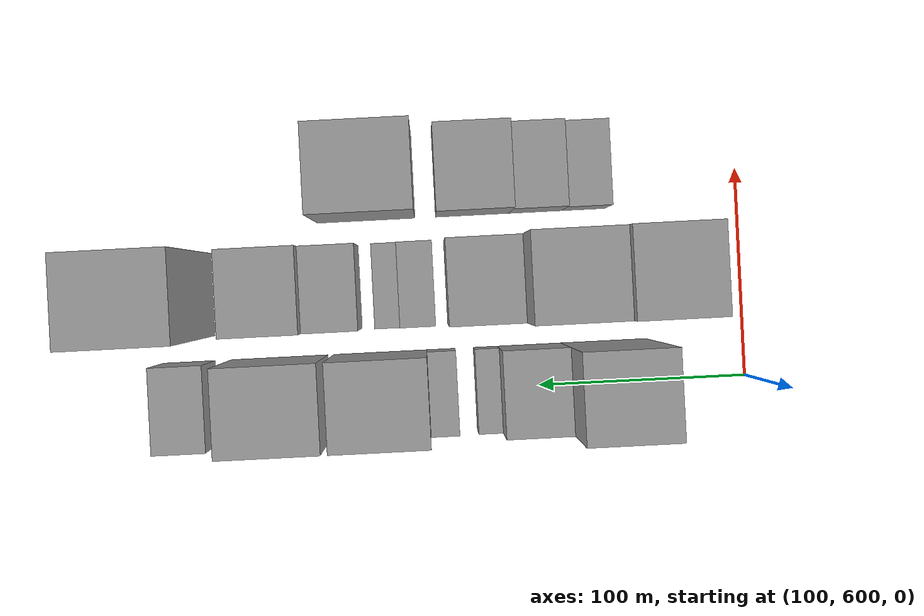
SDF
<sdf version="1.6">
 <world name="default">
  <model name="building_46">
   <static>1</static>
   <pose>100.0000 667.8259 0 0.000000 0.000000 0.000000</pose>
   <link name="link">
    <pose>0 0 54.00 0 0 0</pose>
    <collision name="collision"><geometry><box><size>40.0000 41.4337 108.0000</size></box></geometry></collision>
    <visual name="visual">
     <cast_shadows>0</cast_shadows>
     <geometry><box><size>40.0000 41.4337 108.0000</size></box></geometry>
     <material>
      <script>
       <uri>model://grey_wall/materials/scripts</uri>
       <uri>model://grey_wall/materials/textures</uri>
       <name>vrc/grey_wall</name>
      </script>
     </material>
    </visual>
   </link>
  </model>
  <model name="building_47">
   <static>1</static>
   <pose>100.0000 703.9702 0 0.000000 0.000000 0.000000</pose>
   <link name="link">
    <pose>0 0 28.50 0 0 0</pose>
    <collision name="collision"><geometry><box><size>40.0000 30.8548 57.0000</size></box></geometry></collision>
    <visual name="visual">
     <cast_shadows>0</cast_shadows>
     <geometry><box><size>40.0000 30.8548 57.0000</size></box></geometry>
     <material>
      <script>
       <uri>model://grey_wall/materials/scripts</uri>
       <uri>model://grey_wall/materials/textures</uri>
       <name>vrc/grey_wall</name>
      </script>
     </material>
    </visual>
   </link>
  </model>
  <model name="building_48">
   <static>1</static>
   <pose>100.0000 725.1432 0 0.000000 0.000000 0.000000</pose>
   <link name="link">
    <pose>0 0 12.00 0 0 0</pose>
    <collision name="collision"><geometry><box><size>40.0000 11.4913 24.0000</size></box></geometry></collision>
    <visual name="visual">
     <cast_shadows>0</cast_shadows>
     <geometry><box><size>40.0000 11.4913 24.0000</size></box></geometry>
     <material>
      <script>
       <uri>model://grey_wall/materials/scripts</uri>
       <uri>model://grey_wall/materials/textures</uri>
       <name>vrc/grey_wall</name>
      </script>
     </material>
    </visual>
   </link>
  </model>
  <model name="building_49">
   <static>1</static>
   <pose>100.0000 746.6325 0 0.000000 0.000000 0.000000</pose>
   <link name="link">
    <pose>0 0 13.50 0 0 0</pose>
    <collision name="collision"><geometry><box><size>40.0000 13.4873 27.0000</size></box></geometry></collision>
    <visual name="visual">
     <cast_shadows>0</cast_shadows>
     <geometry><box><size>40.0000 13.4873 27.0000</size></box></geometry>
     <material>
      <script>
       <uri>model://grey_wall/materials/scripts</uri>
       <uri>model://grey_wall/materials/textures</uri>
       <name>vrc/grey_wall</name>
      </script>
     </material>
    </visual>
   </link>
  </model>
  <model name="building_50">
   <static>1</static>
   <pose>100.0000 775.8892 0 0.000000 0.000000 0.000000</pose>
   <link name="link">
    <pose>0 0 42.00 0 0 0</pose>
    <collision name="collision"><geometry><box><size>40.0000 45.0261 84.0000</size></box></geometry></collision>
    <visual name="visual">
     <cast_shadows>0</cast_shadows>
     <geometry><box><size>40.0000 45.0261 84.0000</size></box></geometry>
     <material>
      <script>
       <uri>model://grey_wall/materials/scripts</uri>
       <uri>model://grey_wall/materials/textures</uri>
       <name>vrc/grey_wall</name>
      </script>
     </material>
    </visual>
   </link>
  </model>
  <model name="building_51">
   <static>1</static>
   <pose>100.0000 824.7497 0 0.000000 0.000000 0.000000</pose>
   <link name="link">
    <pose>0 0 42.00 0 0 0</pose>
    <collision name="collision"><geometry><box><size>40.0000 46.6949 84.0000</size></box></geometry></collision>
    <visual name="visual">
     <cast_shadows>0</cast_shadows>
     <geometry><box><size>40.0000 46.6949 84.0000</size></box></geometry>
     <material>
      <script>
       <uri>model://grey_wall/materials/scripts</uri>
       <uri>model://grey_wall/materials/textures</uri>
       <name>vrc/grey_wall</name>
      </script>
     </material>
    </visual>
   </link>
  </model>
  <model name="building_52">
   <static>1</static>
   <pose>100.0000 868.5362 0 0.000000 0.000000 0.000000</pose>
   <link name="link">
    <pose>0 0 24.00 0 0 0</pose>
    <collision name="collision"><geometry><box><size>40.0000 24.8780 48.0000</size></box></geometry></collision>
    <visual name="visual">
     <cast_shadows>0</cast_shadows>
     <geometry><box><size>40.0000 24.8780 48.0000</size></box></geometry>
     <material>
      <script>
       <uri>model://grey_wall/materials/scripts</uri>
       <uri>model://grey_wall/materials/textures</uri>
       <name>vrc/grey_wall</name>
      </script>
     </material>
    </visual>
   </link>
  </model>
  <model name="building_95">
   <static>1</static>
   <pose>152.0000 647.0795 0 0.000000 0.000000 0.000000</pose>
   <link name="link">
    <pose>0 0 60.00 0 0 0</pose>
    <collision name="collision"><geometry><box><size>40.0000 38.8852 120.0000</size></box></geometry></collision>
    <visual name="visual">
     <cast_shadows>0</cast_shadows>
     <geometry><box><size>40.0000 38.8852 120.0000</size></box></geometry>
     <material>
      <script>
       <uri>model://grey_wall/materials/scripts</uri>
       <uri>model://grey_wall/materials/textures</uri>
       <name>vrc/grey_wall</name>
      </script>
     </material>
    </visual>
   </link>
  </model>
  <model name="building_96">
   <static>1</static>
   <pose>152.0000 687.1343 0 0.000000 0.000000 0.000000</pose>
   <link name="link">
    <pose>0 0 55.50 0 0 0</pose>
    <collision name="collision"><geometry><box><size>40.0000 41.2244 111.0000</size></box></geometry></collision>
    <visual name="visual">
     <cast_shadows>0</cast_shadows>
     <geometry><box><size>40.0000 41.2244 111.0000</size></box></geometry>
     <material>
      <script>
       <uri>model://grey_wall/materials/scripts</uri>
       <uri>model://grey_wall/materials/textures</uri>
       <name>vrc/grey_wall</name>
      </script>
     </material>
    </visual>
   </link>
  </model>
  <model name="building_97">
   <static>1</static>
   <pose>152.0000 725.1940 0 0.000000 0.000000 0.000000</pose>
   <link name="link">
    <pose>0 0 30.00 0 0 0</pose>
    <collision name="collision"><geometry><box><size>40.0000 34.8949 60.0000</size></box></geometry></collision>
    <visual name="visual">
     <cast_shadows>0</cast_shadows>
     <geometry><box><size>40.0000 34.8949 60.0000</size></box></geometry>
     <material>
      <script>
       <uri>model://grey_wall/materials/scripts</uri>
       <uri>model://grey_wall/materials/textures</uri>
       <name>vrc/grey_wall</name>
      </script>
     </material>
    </visual>
   </link>
  </model>
  <model name="building_98">
   <static>1</static>
   <pose>152.0000 756.9708 0 0.000000 0.000000 0.000000</pose>
   <link name="link">
    <pose>0 0 16.50 0 0 0</pose>
    <collision name="collision"><geometry><box><size>40.0000 16.6586 33.0000</size></box></geometry></collision>
    <visual name="visual">
     <cast_shadows>0</cast_shadows>
     <geometry><box><size>40.0000 16.6586 33.0000</size></box></geometry>
     <material>
      <script>
       <uri>model://grey_wall/materials/scripts</uri>
       <uri>model://grey_wall/materials/textures</uri>
       <name>vrc/grey_wall</name>
      </script>
     </material>
    </visual>
   </link>
  </model>
  <model name="building_99">
   <static>1</static>
   <pose>152.0000 771.2315 0 0.000000 0.000000 0.000000</pose>
   <link name="link">
    <pose>0 0 13.50 0 0 0</pose>
    <collision name="collision"><geometry><box><size>40.0000 11.8629 27.0000</size></box></geometry></collision>
    <visual name="visual">
     <cast_shadows>0</cast_shadows>
     <geometry><box><size>40.0000 11.8629 27.0000</size></box></geometry>
     <material>
      <script>
       <uri>model://grey_wall/materials/scripts</uri>
       <uri>model://grey_wall/materials/textures</uri>
       <name>vrc/grey_wall</name>
      </script>
     </material>
    </visual>
   </link>
  </model>
  <model name="building_100">
   <static>1</static>
   <pose>152.0000 797.1972 0 0.000000 0.000000 0.000000</pose>
   <link name="link">
    <pose>0 0 24.00 0 0 0</pose>
    <collision name="collision"><geometry><box><size>40.0000 26.0684 48.0000</size></box></geometry></collision>
    <visual name="visual">
     <cast_shadows>0</cast_shadows>
     <geometry><box><size>40.0000 26.0684 48.0000</size></box></geometry>
     <material>
      <script>
       <uri>model://grey_wall/materials/scripts</uri>
       <uri>model://grey_wall/materials/textures</uri>
       <name>vrc/grey_wall</name>
      </script>
     </material>
    </visual>
   </link>
  </model>
  <model name="building_101">
   <static>1</static>
   <pose>152.0000 828.4185 0 0.000000 0.000000 0.000000</pose>
   <link name="link">
    <pose>0 0 31.50 0 0 0</pose>
    <collision name="collision"><geometry><box><size>40.0000 36.3743 63.0000</size></box></geometry></collision>
    <visual name="visual">
     <cast_shadows>0</cast_shadows>
     <geometry><box><size>40.0000 36.3743 63.0000</size></box></geometry>
     <material>
      <script>
       <uri>model://grey_wall/materials/scripts</uri>
       <uri>model://grey_wall/materials/textures</uri>
       <name>vrc/grey_wall</name>
      </script>
     </material>
    </visual>
   </link>
  </model>
  <model name="building_102">
   <static>1</static>
   <pose>152.0000 879.6352 0 0.000000 0.000000 0.000000</pose>
   <link name="link">
    <pose>0 0 66.00 0 0 0</pose>
    <collision name="collision"><geometry><box><size>40.0000 48.0590 132.0000</size></box></geometry></collision>
    <visual name="visual">
     <cast_shadows>0</cast_shadows>
     <geometry><box><size>40.0000 48.0590 132.0000</size></box></geometry>
     <material>
      <script>
       <uri>model://grey_wall/materials/scripts</uri>
       <uri>model://grey_wall/materials/textures</uri>
       <name>vrc/grey_wall</name>
      </script>
     </material>
    </visual>
   </link>
  </model>
  <model name="building_149">
   <static>1</static>
   <pose>204.0000 674.3682 0 0.000000 0.000000 0.000000</pose>
   <link name="link">
    <pose>0 0 18.00 0 0 0</pose>
    <collision name="collision"><geometry><box><size>40.0000 21.0554 36.0000</size></box></geometry></collision>
    <visual name="visual">
     <cast_shadows>0</cast_shadows>
     <geometry><box><size>40.0000 21.0554 36.0000</size></box></geometry>
     <material>
      <script>
       <uri>model://grey_wall/materials/scripts</uri>
       <uri>model://grey_wall/materials/textures</uri>
       <name>vrc/grey_wall</name>
      </script>
     </material>
    </visual>
   </link>
  </model>
  <model name="building_150">
   <static>1</static>
   <pose>204.0000 697.6759 0 0.000000 0.000000 0.000000</pose>
   <link name="link">
    <pose>0 0 22.50 0 0 0</pose>
    <collision name="collision"><geometry><box><size>40.0000 25.5600 45.0000</size></box></geometry></collision>
    <visual name="visual">
     <cast_shadows>0</cast_shadows>
     <geometry><box><size>40.0000 25.5600 45.0000</size></box></geometry>
     <material>
      <script>
       <uri>model://grey_wall/materials/scripts</uri>
       <uri>model://grey_wall/materials/textures</uri>
       <name>vrc/grey_wall</name>
      </script>
     </material>
    </visual>
   </link>
  </model>
  <model name="building_151">
   <static>1</static>
   <pose>204.0000 728.1979 0 0.000000 0.000000 0.000000</pose>
   <link name="link">
    <pose>0 0 30.00 0 0 0</pose>
    <collision name="collision"><geometry><box><size>40.0000 35.4840 60.0000</size></box></geometry></collision>
    <visual name="visual">
     <cast_shadows>0</cast_shadows>
     <geometry><box><size>40.0000 35.4840 60.0000</size></box></geometry>
     <material>
      <script>
       <uri>model://grey_wall/materials/scripts</uri>
       <uri>model://grey_wall/materials/textures</uri>
       <name>vrc/grey_wall</name>
      </script>
     </material>
    </visual>
   </link>
  </model>
  <model name="building_152">
   <static>1</static>
   <pose>204.0000 779.5490 0 0.000000 0.000000 0.000000</pose>
   <link name="link">
    <pose>0 0 45.00 0 0 0</pose>
    <collision name="collision"><geometry><box><size>40.0000 47.2181 90.0000</size></box></geometry></collision>
    <visual name="visual">
     <cast_shadows>0</cast_shadows>
     <geometry><box><size>40.0000 47.2181 90.0000</size></box></geometry>
     <material>
      <script>
       <uri>model://grey_wall/materials/scripts</uri>
       <uri>model://grey_wall/materials/textures</uri>
       <name>vrc/grey_wall</name>
      </script>
     </material>
    </visual>
   </link>
  </model>
 </world>
</sdf>
